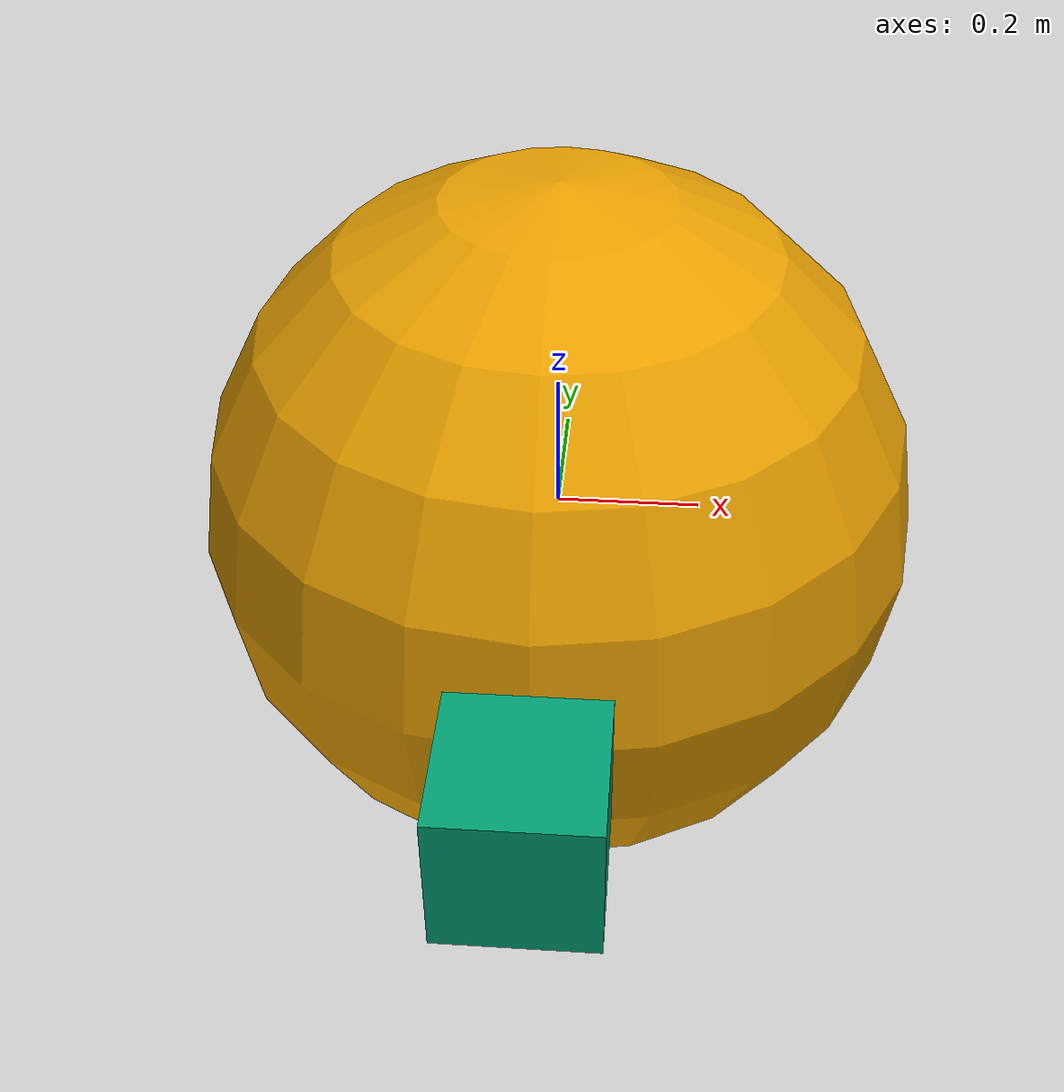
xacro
<?xml version="1.0"?>

<robot name="ball" xmlns:xacro="http://www.ros.org/wiki/xacro">
  <xacro:arg name="debug" default="0"/>
  <xacro:arg name="namespace" default="ball"/>

  <!-- ${...} expressions resolve xacro properties, not args: expose the args
       below as properties so that link names and plugin params can use them -->
  <xacro:property name="namespace" value="$(arg namespace)"/>

  <!-- Body: solid sphere, r = 0.5 m -->
  <xacro:property name="radius" value="0.5"/>
  <!-- V = (4/3)*pi*r^3 = (4/3)*pi*0.125 = 0.5235987756 -->
  <xacro:property name="volume" value="0.5235987755982988"/>
  <!-- Total mass of the vehicle (sphere + thrusters) -->
  <xacro:property name="mass" value="500.0"/>

  <!-- Thrusters: cubes on the sides of the sphere -->
  <xacro:property name="thruster_size" value="0.2"/>
  <xacro:property name="thruster_mass" value="5.0"/>
  <!-- solid cube inertia: I = m*(a^2 + a^2)/12 -->
  <xacro:property name="thruster_inertia"
                  value="${thruster_mass * 2.0 * thruster_size * thruster_size / 12.0}"/>
  <!-- centre of each cube: just outside the sphere surface -->
  <xacro:property name="thruster_offset_y" value="${radius + thruster_size / 2.0}"/>
  <!-- thrust of one thruster: F = rotorConstant * |w| * w
       (0.01 -> 100 N at 100 rad/s, 2742 N at 5000 rpm) -->
  <xacro:property name="thruster_rotor_constant" value="0.01"/>
  <!-- Limits must not clip the teleop throttle: 5000 rpm = 523.6 rad/s and
       gives 0.01 * 523.6^2 = 2742 N, so both limits sit above that point. -->
  <xacro:property name="thruster_clamp_max" value="550.0"/>
  <xacro:property name="thruster_thrust_max" value="3000.0"/>

  <!-- Fluid properties: neutral buoyancy, see the note above -->
  <xacro:property name="fluid_density" value="${mass / volume}"/>
  <!-- added mass of a sphere: 2/3*rho*pi*r^3 = 0.5 * m per linear axis -->
  <xacro:property name="added_mass" value="${mass / 2.0}"/>
  <!-- quadratic damping of a sphere: 0.5*rho*Cd*A (Cd ~ 0.5) and a small
       rotational term -->
  <xacro:property name="quadratic_damping_linear"
                  value="${0.5 * fluid_density * 0.5 * 3.141592653589793 * radius * radius}"/>
  <xacro:property name="quadratic_damping_angular" value="20.0"/>

  <!-- The sphere alone, without the two thrusters -->
  <xacro:property name="hull_mass" value="${mass - 2.0 * thruster_mass}"/>
  <xacro:property name="hull_inertia"
                  value="${0.4 * hull_mass * radius * radius}"/>

  <link name="${namespace}/base_link">
    <inertial>
      <mass value="${hull_mass}"/>
      <origin xyz="0 0 0"/>
      <inertia ixx="${hull_inertia}" ixy="0.0" ixz="0.0"
               iyy="${hull_inertia}" iyz="0.0" izz="${hull_inertia}"/>
    </inertial>
    <visual>
      <origin xyz="0 0 0" rpy="0 0 0"/>
      <geometry>
        <sphere radius="${radius}"/>
      </geometry>
    </visual>
    <collision>
      <origin xyz="0 0 0" rpy="0 0 0"/>
      <geometry>
        <sphere radius="${radius}"/>
      </geometry>
    </collision>
  </link>

  <!-- Thruster 1: left side of the sphere -->
  <link name="${namespace}/thruster_left">
    <inertial>
      <mass value="${thruster_mass}"/>
      <origin xyz="0 0 0"/>
      <inertia ixx="${thruster_inertia}" ixy="0.0" ixz="0.0"
               iyy="${thruster_inertia}" iyz="0.0" izz="${thruster_inertia}"/>
    </inertial>
    <visual>
      <origin xyz="0 0 0" rpy="0 0 0"/>
      <geometry>
        <box size="${thruster_size} ${thruster_size} ${thruster_size}"/>
      </geometry>
    </visual>
    <collision>
      <origin xyz="0 0 0" rpy="0 0 0"/>
      <geometry>
        <box size="${thruster_size} ${thruster_size} ${thruster_size}"/>
      </geometry>
    </collision>
  </link>

  <joint name="${namespace}/thruster_left_joint" type="fixed">
    <parent link="${namespace}/base_link"/>
    <child link="${namespace}/thruster_left"/>
    <origin xyz="0 ${thruster_offset_y} 0" rpy="0 0 0"/>
  </joint>

  <!-- Thruster 2: right side of the sphere -->
  <link name="${namespace}/thruster_right">
    <inertial>
      <mass value="${thruster_mass}"/>
      <origin xyz="0 0 0"/>
      <inertia ixx="${thruster_inertia}" ixy="0.0" ixz="0.0"
               iyy="${thruster_inertia}" iyz="0.0" izz="${thruster_inertia}"/>
    </inertial>
    <visual>
      <origin xyz="0 0 0" rpy="0 0 0"/>
      <geometry>
        <box size="${thruster_size} ${thruster_size} ${thruster_size}"/>
      </geometry>
    </visual>
    <collision>
      <origin xyz="0 0 0" rpy="0 0 0"/>
      <geometry>
        <box size="${thruster_size} ${thruster_size} ${thruster_size}"/>
      </geometry>
    </collision>
  </link>

  <joint name="${namespace}/thruster_right_joint" type="fixed">
    <parent link="${namespace}/base_link"/>
    <child link="${namespace}/thruster_right"/>
    <origin xyz="0 ${-thruster_offset_y} 0" rpy="0 0 0"/>
  </joint>

  <!-- Buoyancy and hydrodynamics of the body -->
  <gazebo>
    <!-- The plugin name is the name registered by the library (see
         GZ_ADD_PLUGIN_ALIAS), not a free form instance label. -->
    <plugin name="underwater_object" filename="libunderwater_object.so">
      <link_name>${namespace}/base_link</link_name>
      <debug>$(arg debug)</debug>

      <fluid_density>${fluid_density}</fluid_density>
      <volume>${volume}</volume>
      <!-- The sphere is homogeneous and the thrusters are symmetric, so the
           centre of gravity coincides with the centre of buoyancy -->
      <center_of_buoyancy>0 0 0</center_of_buoyancy>
      <center_of_mass>0 0 0</center_of_mass>

      <added_mass>${added_mass} 0 0 0 0 0
                   0 ${added_mass} 0 0 0 0
                   0 0 ${added_mass} 0 0 0
                   0 0 0 0 0 0
                   0 0 0 0 0 0
                   0 0 0 0 0 0</added_mass>
      <linear_damping>0 0 0 0 0 0</linear_damping>
      <quadratic_damping>${quadratic_damping_linear}
                         ${quadratic_damping_linear}
                         ${quadratic_damping_linear}
                         ${quadratic_damping_angular}
                         ${quadratic_damping_angular}
                         ${quadratic_damping_angular}</quadratic_damping>
    </plugin>

    <!-- Thruster 1: pushes along +x from the left side of the sphere -->
    <plugin name="thruster" filename="libthruster.so">
      <link_name>${namespace}/base_link</link_name>
      <debug>$(arg debug)</debug>
      <thruster_id>0</thruster_id>
      <thruster_axis>1 0 0</thruster_axis>
      <application_point>0 ${thruster_offset_y} 0</application_point>
      <center_of_mass>0 0 0</center_of_mass>
      <clamp_max>${thruster_clamp_max}</clamp_max>
      <thrust_max>${thruster_thrust_max}</thrust_max>
      <dynamics>
        <type>ZeroOrder</type>
      </dynamics>
      <conversion>
        <type>Basic</type>
        <rotorConstant>${thruster_rotor_constant}</rotorConstant>
      </conversion>
    </plugin>

    <!-- Thruster 2: pushes along +x from the right side of the sphere.
         Equal commands on both thrusters move the body forward, opposite
         commands rotate it about z. -->
    <plugin name="thruster" filename="libthruster.so">
      <link_name>${namespace}/base_link</link_name>
      <debug>$(arg debug)</debug>
      <thruster_id>1</thruster_id>
      <thruster_axis>1 0 0</thruster_axis>
      <application_point>0 ${-thruster_offset_y} 0</application_point>
      <center_of_mass>0 0 0</center_of_mass>
      <clamp_max>${thruster_clamp_max}</clamp_max>
      <thrust_max>${thruster_thrust_max}</thrust_max>
      <dynamics>
        <type>ZeroOrder</type>
      </dynamics>
      <conversion>
        <type>Basic</type>
        <rotorConstant>${thruster_rotor_constant}</rotorConstant>
      </conversion>
    </plugin>

    <plugin filename="gz-sim-imu-system" name="gz::sim::systems::Imu"/>

    <plugin filename="gz-sim-sensors-system" name="gz::sim::systems::Sensors">
      <render_engine>ogre2</render_engine>
    </plugin>

    <xacro:if value="$(arg debug)">
      <plugin filename="gz-sim-pose-publisher-system" name="gz::sim::systems::PosePublisher">
        <publish_model_pose>true</publish_model_pose>
        <publish_link_pose>false</publish_link_pose>
        <publish_visual_pose>false</publish_visual_pose>
        <publish_collision_pose>false</publish_collision_pose>
        <publish_sensor_pose>false</publish_sensor_pose>
        <publish_nested_model_pose>false</publish_nested_model_pose>
        <topic>/${namespace}/debug/pose</topic>
      </plugin>
    </xacro:if>

    <plugin name="water_pressure" filename="libwater_pressure.so">
      <link_name>${namespace}/base_link</link_name>
      <surface_z>0.0</surface_z>
      <fluid_density>1028.0</fluid_density>
      <update_rate>10</update_rate>
      <noise_stddev>0.0</noise_stddev>
      <debug>$(arg debug)</debug>
    </plugin>
  </gazebo>

  <gazebo reference="${namespace}/base_link">
    <sensor name="imu_sensor" type="imu">
      <always_on>1</always_on>
      <update_rate>50</update_rate>
      <visualize>false</visualize>
      <topic>/${namespace}/sensors/imu</topic>
    </sensor>

    <sensor name="front_camera" type="camera">
      <pose>0.4 0 0 0 0 0</pose>
      <always_on>1</always_on>
      <update_rate>30</update_rate>
      <visualize>true</visualize>
      <topic>/${namespace}/sensors/camera/front</topic>
      <camera>
        <horizontal_fov>1.0471975511965976</horizontal_fov>
        <image>
          <width>640</width>
          <height>480</height>
          <format>R8G8B8</format>
        </image>
        <clip>
          <near>0.1</near>
          <far>100</far>
        </clip>
        <camera_info_topic>/${namespace}/sensors/camera/front/camera_info</camera_info_topic>
      </camera>
    </sensor>
  </gazebo>
</robot>
